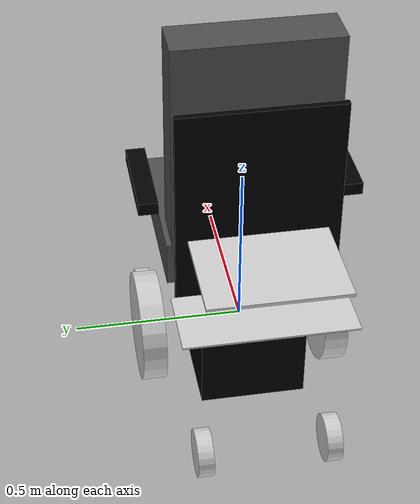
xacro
<?xml version="1.0"?>
<robot xmlns:xacro="http://www.ros.org/wiki/xacro" name="wheelchair">

	<!-- Common and materials -->
	<xacro:include filename="$(find cnbiros_wheelchair_description)/urdf/materials.urdf.xacro" />

	<!-- Base urdf -->
	<xacro:include filename="$(find cnbiros_wheelchair_description)/urdf/base_NEW.urdf.xacro" />

</robot>

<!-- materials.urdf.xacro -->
<robot>
	<material name="black">
		<color rgba="0 0 0 1"/>
	</material>

	<material name="grey">
		<color rgba="0.8 0.8 0.8 1"/>
	</material>

	<material name="green">
		<color rgba="0 1 0 1"/>
	</material>
</robot>

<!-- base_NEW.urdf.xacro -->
<robot xmlns:xacro="http://www.ros.org/wiki/xacro" name="wheelchair">
	<!-- Color are defined in materials.urdf.xacro -->

	<xacro:property name="M_PI" value="3.1415926535897931" />

	<!-- Base origin and size -->
	<xacro:property name="base_size_x"   value="0.462" />
	<xacro:property name="base_size_y"   value="0.310" />
	<xacro:property name="base_size_z"   value="0.270" />

	<xacro:property name="base_origin_x" value="0.000" />
	<xacro:property name="base_origin_y" value="0.000" />
	<xacro:property name="base_origin_z" value="0.000" />

	<xacro:property name="base_offset_z" value="0.073" />

	<!-- Wheels size and offsets-->
	<xacro:property name="wheel_main_radius"      value="0.167" />
	<xacro:property name="wheel_main_width"       value="0.072" />
	<xacro:property name="wheel_secondary_radius" value="0.070" />
	<xacro:property name="wheel_secondary_width"  value="0.046" />

	<xacro:property name="wheel_main_offset_x"    value="0.033" />
	<xacro:property name="wheel_main_offset_y"    value="-0.278" />
	<xacro:property name="wheel_main_offset_z"    value="${wheel_main_radius-base_offset_z-base_size_z/2}" />
	<xacro:property name="wheel_front_offset_x"   value="0.323" />
	<xacro:property name="wheel_front_offset_y"   value="-0.257" />
	<xacro:property name="wheel_front_offset_z"   value="${wheel_secondary_radius-base_offset_z-base_size_z/2}" />
	<xacro:property name="wheel_back_offset_x"    value="-0.436" />
	<xacro:property name="wheel_back_offset_y"    value="-0.187" />
	<xacro:property name="wheel_back_offset_z"    value="${wheel_secondary_radius-base_offset_z-base_size_z/2}" />

	<!-- Upper-base size and offset (related to base link)-->
	<xacro:property name="upperbase_size_x" 	   value="0.491" />
	<xacro:property name="upperbase_size_y" 	   value="0.247" />
	<xacro:property name="upperbase_size_z" 	   value="0.040" />

	<xacro:property name="upperbase_offset_x" 	   value="-0.063" />
	<xacro:property name="upperbase_offset_y" 	   value="0.000" />
	<xacro:property name="upperbase_offset_z" 	   value="0.199" />

	<!-- Back structure size and offset (related to upperbase) -->
	<xacro:property name="backstructure_size_x"		value="0.020" />
	<xacro:property name="backstructure_size_y" 	value="0.460" />
	<xacro:property name="backstructure_size_z" 	value="0.620" />

	<xacro:property name="backstructure_offset_x"	value="-0.162" />
	<xacro:property name="backstructure_offset_y"	value="0.000" />
	<xacro:property name="backstructure_offset_z"	value="0.352" />

	<!-- Armrest and offset (related to upperbase) -->
	<xacro:property name="armrest_size_x"			value="0.278" />
	<xacro:property name="armrest_size_y"			value="0.056" />
	<xacro:property name="armrest_size_z"			value="0.036" />

	<xacro:property name="armrest_offset_x"			value="0.068" />
	<xacro:property name="armrest_offset_y"			value="-0.288" />
	<xacro:property name="armrest_offset_z"			value="0.318" />

	<!-- Bottomseat and offset (related to upperbase) -->
	<xacro:property name="bottomseat_size_x"		value="0.440" />
	<xacro:property name="bottomseat_size_y"		value="0.490" />
	<xacro:property name="bottomseat_size_z"		value="0.130" />

	<xacro:property name="bottomseat_offset_x"		value="0.109" />
	<xacro:property name="bottomseat_offset_y"		value="0.000" />
	<xacro:property name="bottomseat_offset_z"		value="0.151" />

	<!-- Backseat and offset (related to upperbase) -->
	<xacro:property name="backseat_size_x"			value="0.130" />
	<xacro:property name="backseat_size_y"			value="0.460" />
	<xacro:property name="backseat_size_z"			value="0.640" />

	<xacro:property name="backseat_offset_x"		value="-0.047" />
	<xacro:property name="backseat_offset_y"		value="0.000" />
	<xacro:property name="backseat_offset_z"		value="0.502" />

	<!-- Lowerplatform and offset (related to upperbase) -->
	<xacro:property name="lowerplatform_size_x"		value="0.212" />
	<xacro:property name="lowerplatform_size_y"		value="0.491" />
	<xacro:property name="lowerplatform_size_z"		value="0.005" />

	<xacro:property name="lowerplatform_offset_x"	value="-0.284" />
	<xacro:property name="lowerplatform_offset_y"	value="0.000" />
	<xacro:property name="lowerplatform_offset_z"	value="0.083" />

	<!-- Upperplatform and offset (related to upperbase) -->
	<xacro:property name="upperplatform_size_x"		value="0.310" />
	<xacro:property name="upperplatform_size_y"		value="0.391" />
	<xacro:property name="upperplatform_size_z"		value="0.010" />

	<xacro:property name="upperplatform_offset_x"	value="-0.307" />
	<xacro:property name="upperplatform_offset_y"	value="0.000" />
	<xacro:property name="upperplatform_offset_z"	value="0.268" />

<!-- ****************** Wheel macro ************************** -->
	<xacro:macro name="wheel" params="name parent *shape *location">
		<joint name="${name}_joint" type="continuous">
			<axis rpy="0 0 0" xyz="0 1 0"/>
			<parent link="${parent}_link"/>
			<child link="${name}_link"/>
			<xacro:insert_block name="location"/>
    	</joint>
		<link name="${name}_link">
			<inertial>
				<mass value="5"/>
				<inertia
					ixx="1" ixy="0.0" ixz="0.0"
					iyy="1" iyz="0.0"
					izz="1"/>
			</inertial>
			<visual>
				<origin xyz="0 0 0" rpy="0 ${M_PI/2} ${M_PI/2}" />
				<geometry>
					<xacro:insert_block name="shape"/>
				</geometry>
				<material name="grey"/>
			</visual>

			<collision>
				<origin xyz="0 0 0" rpy="0 ${M_PI/2} ${M_PI/2}" />
				<geometry>
					<xacro:insert_block name="shape"/>
				</geometry>
			</collision>
		</link>
	</xacro:macro>

<!-- ******************  Base ************************** -->
	<link name="base_link">
		<inertial>
			<mass value="100"/>
			<inertia
				ixx="1" ixy="0.0" ixz="0.0"
				iyy="1" iyz="0.0"
				izz="1"/>
		</inertial>
		<visual>
			<origin xyz="${base_origin_x} ${base_origin_y} ${base_origin_z}" rpy="0 0 0"/>
			<geometry>
				<box size="${base_size_x} ${base_size_y} ${base_size_z}"/>
			</geometry>
			<material name="black"/>
		</visual>

		<collision>
			<origin xyz="${base_origin_x} ${base_origin_y} ${base_origin_z}" rpy="0 0 0"/>
			<geometry>
				<box size="${base_size_x} ${base_size_y} ${base_size_z}"/>
			</geometry>
		</collision>
	</link>

<!-- ******************  UpperBase ************************** -->
	<joint name="upperbase_joint" type="prismatic">
		<parent link="base_link"/>
		<axis xyz="0 0 1"/>
		<child link="upperbase_link"/>
		<limit effort="1000.0" lower="0.0" upper="0.100" velocity="0.01"/>
		<origin xyz="${upperbase_offset_x} ${upperbase_offset_y} ${upperbase_offset_z}"/>
    </joint>

	<link name="upperbase_link">
		<inertial>
			<mass value="10"/>
			<inertia
				ixx="1" ixy="0.0" ixz="0.0"
				iyy="1" iyz="0.0"
				izz="1"/>
		</inertial>
		<visual>
			<geometry>
				<box size="${upperbase_size_x} ${upperbase_size_y} ${upperbase_size_z}"/>
			</geometry>
			<material name="black"/>
		</visual>

		<collision>
			<geometry>
				<box size="${upperbase_size_x} ${upperbase_size_y} ${upperbase_size_z}"/>
			</geometry>
		</collision>
	</link>

<!-- ******************  BackStructure ************************** -->
	<joint name="backstructure_joint" type="fixed">
		<parent link="upperbase_link"/>
		<child link="backstructure_link"/>
		<origin xyz="${backstructure_offset_x} ${backstructure_offset_y} ${backstructure_offset_z}"/>
    </joint>

	<link name="backstructure_link">
		<inertial>
			<mass value="10"/>
			<inertia
				ixx="1" ixy="0.0" ixz="0.0"
				iyy="1" iyz="0.0"
				izz="1"/>
		</inertial>
		<visual>
			<geometry>
				<box size="${backstructure_size_x} ${backstructure_size_y} ${backstructure_size_z}"/>
			</geometry>
			<material name="black"/>
		</visual>

		<collision>
			<geometry>
				<box size="${backstructure_size_x} ${backstructure_size_y} ${backstructure_size_z}"/>
			</geometry>
		</collision>
	</link>

<!-- ******************  Bottomseat ************************** -->
	<joint name="bottomseat_joint" type="fixed">
		<parent link="upperbase_link"/>
		<child link="bottomseat_link"/>
		<origin xyz="${bottomseat_offset_x} ${bottomseat_offset_y} ${bottomseat_offset_z}"/>
    </joint>

	<link name="bottomseat_link">
		<inertial>
			<mass value="10"/>
			<inertia
				ixx="1" ixy="0.0" ixz="0.0"
				iyy="1" iyz="0.0"
				izz="1"/>
		</inertial>
		<visual>
			<geometry>
				<box size="${bottomseat_size_x} ${bottomseat_size_y} ${bottomseat_size_z}"/>
			</geometry>
			<material name="darkgrey"/>
		</visual>

		<collision>
			<geometry>
				<box size="${bottomseat_size_x} ${bottomseat_size_y} ${bottomseat_size_z}"/>
			</geometry>
		</collision>
	</link>

<!-- ******************  Backseat ************************** -->
	<joint name="backseat_joint" type="fixed">
		<parent link="upperbase_link"/>
		<child link="backseat_link"/>
		<origin xyz="${backseat_offset_x} ${backseat_offset_y} ${backseat_offset_z}"/>
    </joint>

	<link name="backseat_link">
		<inertial>
			<mass value="10"/>
			<inertia
				ixx="1" ixy="0.0" ixz="0.0"
				iyy="1" iyz="0.0"
				izz="1"/>
		</inertial>
		<visual>
			<geometry>
				<box size="${backseat_size_x} ${backseat_size_y} ${backseat_size_z}"/>
			</geometry>
			<material name="darkgrey"/>
		</visual>

		<collision>
			<geometry>
				<box size="${backseat_size_x} ${backseat_size_y} ${backseat_size_z}"/>
			</geometry>
		</collision>
	</link>

<!-- ******************  LowerPlatform ************************** -->
	<joint name="lowerplatform_joint" type="fixed">
		<parent link="upperbase_link"/>
		<child link="lowerplatform_link"/>
		<origin xyz="${lowerplatform_offset_x} ${lowerplatform_offset_y} ${lowerplatform_offset_z}"/>
    </joint>

	<link name="lowerplatform_link">
		<inertial>
			<mass value="10"/>
			<inertia
				ixx="1" ixy="0.0" ixz="0.0"
				iyy="1" iyz="0.0"
				izz="1"/>
		</inertial>
		<visual>
			<geometry>
				<box size="${lowerplatform_size_x} ${lowerplatform_size_y} ${lowerplatform_size_z}"/>
			</geometry>
			<material name="grey"/>
		</visual>

		<collision>
			<geometry>
				<box size="${lowerplatform_size_x} ${lowerplatform_size_y} ${lowerplatform_size_z}"/>
			</geometry>
		</collision>
	</link>

<!-- ******************  UpperPlatform ************************** -->
	<joint name="upperplatform_joint" type="fixed">
		<parent link="upperbase_link"/>
		<child link="upperplatform_link"/>
		<origin xyz="${upperplatform_offset_x} ${upperplatform_offset_y} ${upperplatform_offset_z}"/>
    </joint>

	<link name="upperplatform_link">
		<inertial>
			<mass value="10"/>
			<inertia
				ixx="1" ixy="0.0" ixz="0.0"
				iyy="1" iyz="0.0"
				izz="1"/>
		</inertial>
		<visual>
			<geometry>
				<box size="${upperplatform_size_x} ${upperplatform_size_y} ${upperplatform_size_z}"/>
			</geometry>
			<material name="grey"/>
		</visual>

		<collision>
			<geometry>
				<box size="${upperplatform_size_x} ${upperplatform_size_y} ${upperplatform_size_z}"/>
			</geometry>
		</collision>
	</link>
<!-- ******************  Armrests ************************** -->
	<joint name="armrest_right_joint" type="fixed">
		<parent link="upperbase_link"/>
		<child link="armrest_right_link"/>
		<origin xyz="${armrest_offset_x} ${armrest_offset_y} ${armrest_offset_z}"/>
    </joint>

	<link name="armrest_right_link">
		<inertial>
			<mass value="10"/>
			<inertia
				ixx="1" ixy="0.0" ixz="0.0"
				iyy="1" iyz="0.0"
				izz="1"/>
		</inertial>
		<visual>
			<geometry>
				<box size="${armrest_size_x} ${armrest_size_y} ${armrest_size_z}"/>
			</geometry>
			<material name="black"/>
		</visual>

		<collision>
			<geometry>
				<box size="${armrest_size_x} ${armrest_size_y} ${armrest_size_z}"/>
			</geometry>
		</collision>
	</link>

	<joint name="armrest_left_joint" type="fixed">
		<parent link="upperbase_link"/>
		<child link="armrest_left_link"/>
		<origin xyz="${armrest_offset_x} ${-armrest_offset_y} ${armrest_offset_z}"/>
    </joint>

	<link name="armrest_left_link">
		<inertial>
			<mass value="10"/>
			<inertia
				ixx="1" ixy="0.0" ixz="0.0"
				iyy="1" iyz="0.0"
				izz="1"/>
		</inertial>
		<visual>
			<geometry>
				<box size="${armrest_size_x} ${armrest_size_y} ${armrest_size_z}"/>
			</geometry>
			<material name="black"/>
		</visual>

		<collision>
			<geometry>
				<box size="${armrest_size_x} ${armrest_size_y} ${armrest_size_z}"/>
			</geometry>
		</collision>
	</link>

<!-- ****************** Wheels ************************** -->
	<!-- Wheelchair Wheel0 - Link -->
	<xacro:wheel name="wheel0" parent="base">
		<cylinder radius="${wheel_main_radius}" length="${wheel_main_width}"/>
		<origin xyz="${wheel_main_offset_x} ${wheel_main_offset_y} ${wheel_main_offset_z}" rpy="0 0 0"/>
	</xacro:wheel>

	<!-- Wheelchair Wheel1 - Link -->
	<xacro:wheel name="wheel1" parent="base">
		<cylinder radius="${wheel_main_radius}" length="${wheel_main_width}"/>
		<origin xyz="${wheel_main_offset_x} ${-wheel_main_offset_y} ${wheel_main_offset_z}" rpy="0 0 0"/>
	</xacro:wheel>

	<!-- Wheelchair BackWheel0 - Link -->
	<xacro:wheel name="backwheel0" parent="base">
		<cylinder radius="${wheel_secondary_radius}" length="${wheel_secondary_width}"/>
		<origin xyz="${wheel_back_offset_x} ${wheel_back_offset_y} ${wheel_back_offset_z}" rpy="0 0 0"/>
	</xacro:wheel>

	<!-- Wheelchair BackWheel1 - Link -->
	<xacro:wheel name="backwheel1" parent="base">
		<cylinder radius="${wheel_secondary_radius}" length="${wheel_secondary_width}"/>
		<origin xyz="${wheel_back_offset_x} ${-wheel_back_offset_y} ${wheel_back_offset_z}" rpy="0 0 0"/>
	</xacro:wheel>

	<!-- Wheelchair FrontWheel0 - Link -->
	<xacro:wheel name="frontwheel0" parent="base">
		<cylinder radius="${wheel_secondary_radius}" length="${wheel_secondary_width}"/>
		<origin xyz="${wheel_front_offset_x} ${wheel_front_offset_y} ${wheel_front_offset_z}" rpy="0 0 0"/>
	</xacro:wheel>

	<!-- Wheelchair FrontWheel1 - Link -->
	<xacro:wheel name="frontwheel1" parent="base">
		<cylinder radius="${wheel_secondary_radius}" length="${wheel_secondary_width}"/>
		<origin xyz="${wheel_front_offset_x} ${-wheel_front_offset_y} ${wheel_front_offset_z}" rpy="0 0 0"/>
	</xacro:wheel>

</robot>
